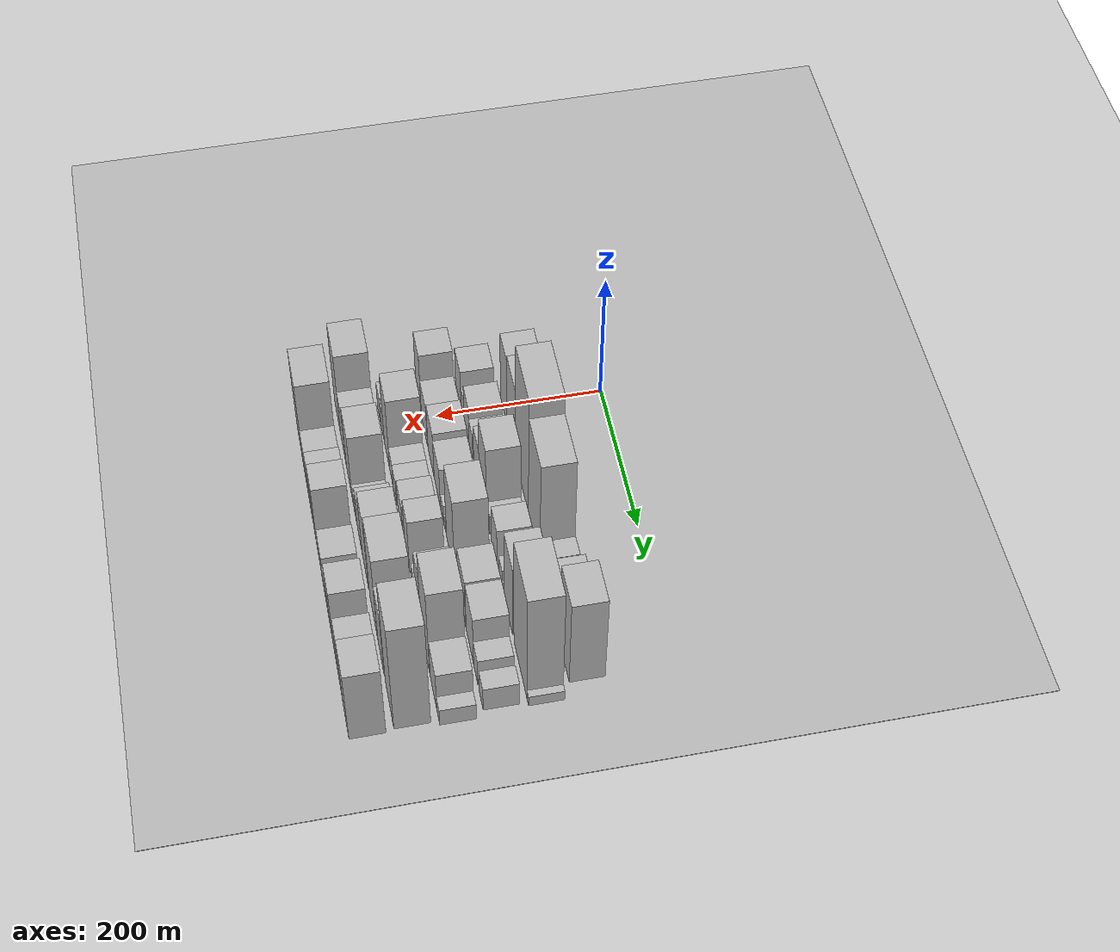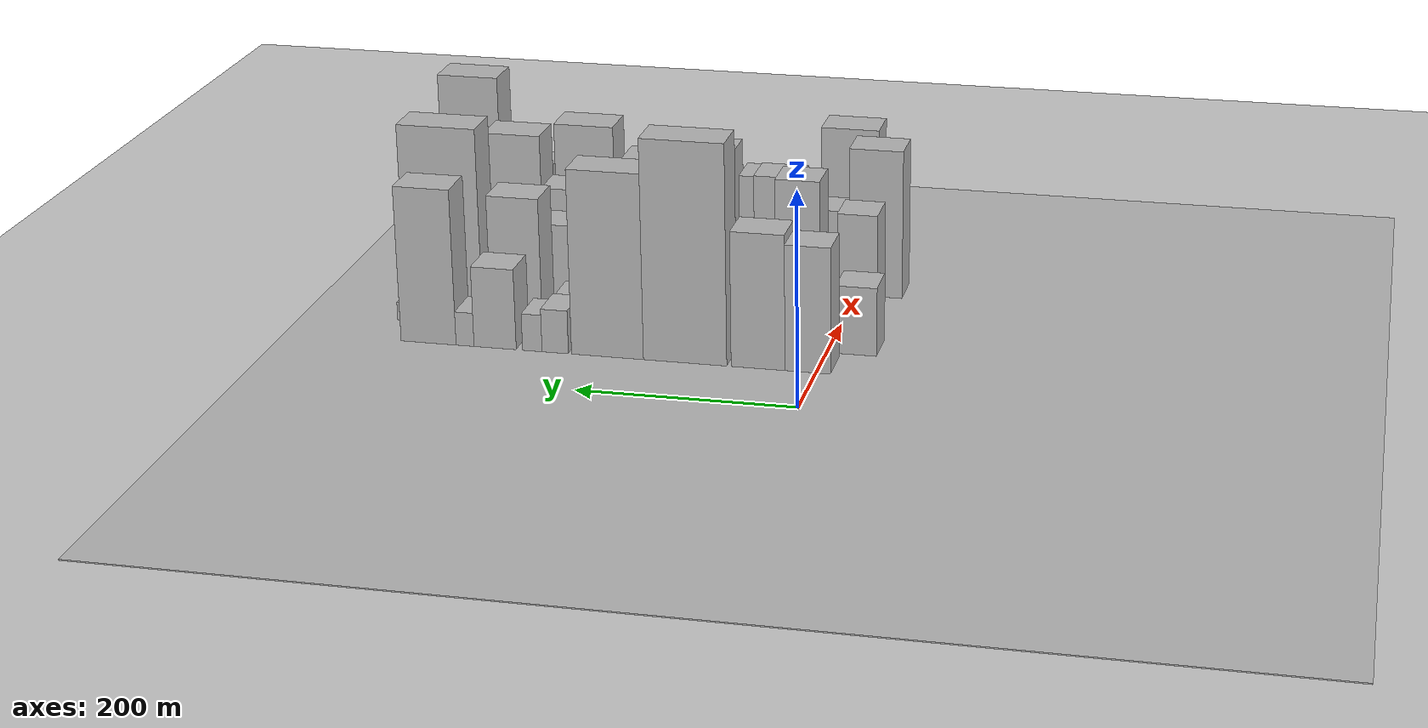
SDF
<sdf version="1.6">
 <world name="default">
  <include><name>ground_plane_1</name><uri>model://HANNAS_ground_plane</uri></include>
  <include>
   <name>ground_plane_2</name>
   <uri>model://HANNAS_ground_plane</uri>
   <pose>100 0 0  0 0 0</pose>
  </include>
  <model name="building_20">
   <static>1</static>
   <pose>100.0000 7.6626 0 0.000000 0.000000 0.000000</pose>
   <link name="link">
    <pose>0 0 60.00 0 0 0</pose>
    <collision name="collision"><geometry><box><size>40.0000 41.7325 120.0000</size></box></geometry></collision>
    <visual name="visual">
     <cast_shadows>0</cast_shadows>
     <geometry><box><size>40.0000 41.7325 120.0000</size></box></geometry>
     <material>
      <script>
       <uri>model://HANNAS_wall/materials/scripts</uri>
       <uri>model://HANNAS_wall/materials/textures</uri>
       <name>vrc/HANNAS_wall</name>
      </script>
     </material>
    </visual>
   </link>
  </model>
  <model name="building_21">
   <static>1</static>
   <pose>100.0000 53.1898 0 0.000000 0.000000 0.000000</pose>
   <link name="link">
    <pose>0 0 64.50 0 0 0</pose>
    <collision name="collision"><geometry><box><size>40.0000 49.3220 129.0000</size></box></geometry></collision>
    <visual name="visual">
     <cast_shadows>0</cast_shadows>
     <geometry><box><size>40.0000 49.3220 129.0000</size></box></geometry>
     <material>
      <script>
       <uri>model://HANNAS_wall/materials/scripts</uri>
       <uri>model://HANNAS_wall/materials/textures</uri>
       <name>vrc/HANNAS_wall</name>
      </script>
     </material>
    </visual>
   </link>
  </model>
  <model name="building_22">
   <static>1</static>
   <pose>100.0000 120.4586 0 0.000000 0.000000 0.000000</pose>
   <link name="link">
    <pose>0 0 105.00 0 0 0</pose>
    <collision name="collision"><geometry><box><size>40.0000 77.2155 210.0000</size></box></geometry></collision>
    <visual name="visual">
     <cast_shadows>0</cast_shadows>
     <geometry><box><size>40.0000 77.2155 210.0000</size></box></geometry>
     <material>
      <script>
       <uri>model://HANNAS_wall/materials/scripts</uri>
       <uri>model://HANNAS_wall/materials/textures</uri>
       <name>vrc/HANNAS_wall</name>
      </script>
     </material>
    </visual>
   </link>
  </model>
  <model name="building_23">
   <static>1</static>
   <pose>100.0000 192.7061 0 0.000000 0.000000 0.000000</pose>
   <link name="link">
    <pose>0 0 88.50 0 0 0</pose>
    <collision name="collision"><geometry><box><size>40.0000 67.2794 177.0000</size></box></geometry></collision>
    <visual name="visual">
     <cast_shadows>0</cast_shadows>
     <geometry><box><size>40.0000 67.2794 177.0000</size></box></geometry>
     <material>
      <script>
       <uri>model://HANNAS_wall/materials/scripts</uri>
       <uri>model://HANNAS_wall/materials/textures</uri>
       <name>vrc/HANNAS_wall</name>
      </script>
     </material>
    </visual>
   </link>
  </model>
  <model name="building_24">
   <static>1</static>
   <pose>100.0000 241.7687 0 0.000000 0.000000 0.000000</pose>
   <link name="link">
    <pose>0 0 21.00 0 0 0</pose>
    <collision name="collision"><geometry><box><size>40.0000 24.8457 42.0000</size></box></geometry></collision>
    <visual name="visual">
     <cast_shadows>0</cast_shadows>
     <geometry><box><size>40.0000 24.8457 42.0000</size></box></geometry>
     <material>
      <script>
       <uri>model://HANNAS_wall/materials/scripts</uri>
       <uri>model://HANNAS_wall/materials/textures</uri>
       <name>vrc/HANNAS_wall</name>
      </script>
     </material>
    </visual>
   </link>
  </model>
  <model name="building_25">
   <static>1</static>
   <pose>100.0000 263.3841 0 0.000000 0.000000 0.000000</pose>
   <link name="link">
    <pose>0 0 18.00 0 0 0</pose>
    <collision name="collision"><geometry><box><size>40.0000 18.3851 36.0000</size></box></geometry></collision>
    <visual name="visual">
     <cast_shadows>0</cast_shadows>
     <geometry><box><size>40.0000 18.3851 36.0000</size></box></geometry>
     <material>
      <script>
       <uri>model://HANNAS_wall/materials/scripts</uri>
       <uri>model://HANNAS_wall/materials/textures</uri>
       <name>vrc/HANNAS_wall</name>
      </script>
     </material>
    </visual>
   </link>
  </model>
  <model name="building_26">
   <static>1</static>
   <pose>100.0000 298.6132 0 0.000000 0.000000 0.000000</pose>
   <link name="link">
    <pose>0 0 39.00 0 0 0</pose>
    <collision name="collision"><geometry><box><size>40.0000 40.0731 78.0000</size></box></geometry></collision>
    <visual name="visual">
     <cast_shadows>0</cast_shadows>
     <geometry><box><size>40.0000 40.0731 78.0000</size></box></geometry>
     <material>
      <script>
       <uri>model://HANNAS_wall/materials/scripts</uri>
       <uri>model://HANNAS_wall/materials/textures</uri>
       <name>vrc/HANNAS_wall</name>
      </script>
     </material>
    </visual>
   </link>
  </model>
  <model name="building_27">
   <static>1</static>
   <pose>100.0000 327.2101 0 0.000000 0.000000 0.000000</pose>
   <link name="link">
    <pose>0 0 16.50 0 0 0</pose>
    <collision name="collision"><geometry><box><size>40.0000 17.1208 33.0000</size></box></geometry></collision>
    <visual name="visual">
     <cast_shadows>0</cast_shadows>
     <geometry><box><size>40.0000 17.1208 33.0000</size></box></geometry>
     <material>
      <script>
       <uri>model://HANNAS_wall/materials/scripts</uri>
       <uri>model://HANNAS_wall/materials/textures</uri>
       <name>vrc/HANNAS_wall</name>
      </script>
     </material>
    </visual>
   </link>
  </model>
  <model name="building_28">
   <static>1</static>
   <pose>100.0000 362.1164 0 0.000000 0.000000 0.000000</pose>
   <link name="link">
    <pose>0 0 75.00 0 0 0</pose>
    <collision name="collision"><geometry><box><size>40.0000 52.6917 150.0000</size></box></geometry></collision>
    <visual name="visual">
     <cast_shadows>0</cast_shadows>
     <geometry><box><size>40.0000 52.6917 150.0000</size></box></geometry>
     <material>
      <script>
       <uri>model://HANNAS_wall/materials/scripts</uri>
       <uri>model://HANNAS_wall/materials/textures</uri>
       <name>vrc/HANNAS_wall</name>
      </script>
     </material>
    </visual>
   </link>
  </model>
  <model name="building_69">
   <static>1</static>
   <pose>149.0000 -27.0081 0 0.000000 0.000000 0.000000</pose>
   <link name="link">
    <pose>0 0 33.00 0 0 0</pose>
    <collision name="collision"><geometry><box><size>40.0000 37.9556 66.0000</size></box></geometry></collision>
    <visual name="visual">
     <cast_shadows>0</cast_shadows>
     <geometry><box><size>40.0000 37.9556 66.0000</size></box></geometry>
     <material>
      <script>
       <uri>model://HANNAS_wall/materials/scripts</uri>
       <uri>model://HANNAS_wall/materials/textures</uri>
       <name>vrc/HANNAS_wall</name>
      </script>
     </material>
    </visual>
   </link>
  </model>
  <model name="building_70">
   <static>1</static>
   <pose>149.0000 2.3802 0 0.000000 0.000000 0.000000</pose>
   <link name="link">
    <pose>0 0 19.50 0 0 0</pose>
    <collision name="collision"><geometry><box><size>40.0000 20.8209 39.0000</size></box></geometry></collision>
    <visual name="visual">
     <cast_shadows>0</cast_shadows>
     <geometry><box><size>40.0000 20.8209 39.0000</size></box></geometry>
     <material>
      <script>
       <uri>model://HANNAS_wall/materials/scripts</uri>
       <uri>model://HANNAS_wall/materials/textures</uri>
       <name>vrc/HANNAS_wall</name>
      </script>
     </material>
    </visual>
   </link>
  </model>
  <model name="building_71">
   <static>1</static>
   <pose>149.0000 29.3461 0 0.000000 0.000000 0.000000</pose>
   <link name="link">
    <pose>0 0 33.00 0 0 0</pose>
    <collision name="collision"><geometry><box><size>40.0000 33.1109 66.0000</size></box></geometry></collision>
    <visual name="visual">
     <cast_shadows>0</cast_shadows>
     <geometry><box><size>40.0000 33.1109 66.0000</size></box></geometry>
     <material>
      <script>
       <uri>model://HANNAS_wall/materials/scripts</uri>
       <uri>model://HANNAS_wall/materials/textures</uri>
       <name>vrc/HANNAS_wall</name>
      </script>
     </material>
    </visual>
   </link>
  </model>
  <model name="building_72">
   <static>1</static>
   <pose>149.0000 58.6786 0 0.000000 0.000000 0.000000</pose>
   <link name="link">
    <pose>0 0 22.50 0 0 0</pose>
    <collision name="collision"><geometry><box><size>40.0000 25.5540 45.0000</size></box></geometry></collision>
    <visual name="visual">
     <cast_shadows>0</cast_shadows>
     <geometry><box><size>40.0000 25.5540 45.0000</size></box></geometry>
     <material>
      <script>
       <uri>model://HANNAS_wall/materials/scripts</uri>
       <uri>model://HANNAS_wall/materials/textures</uri>
       <name>vrc/HANNAS_wall</name>
      </script>
     </material>
    </visual>
   </link>
  </model>
  <model name="building_73">
   <static>1</static>
   <pose>149.0000 95.9520 0 0.000000 0.000000 0.000000</pose>
   <link name="link">
    <pose>0 0 36.00 0 0 0</pose>
    <collision name="collision"><geometry><box><size>40.0000 36.9929 72.0000</size></box></geometry></collision>
    <visual name="visual">
     <cast_shadows>0</cast_shadows>
     <geometry><box><size>40.0000 36.9929 72.0000</size></box></geometry>
     <material>
      <script>
       <uri>model://HANNAS_wall/materials/scripts</uri>
       <uri>model://HANNAS_wall/materials/textures</uri>
       <name>vrc/HANNAS_wall</name>
      </script>
     </material>
    </visual>
   </link>
  </model>
  <model name="building_74">
   <static>1</static>
   <pose>149.0000 137.1826 0 0.000000 0.000000 0.000000</pose>
   <link name="link">
    <pose>0 0 66.00 0 0 0</pose>
    <collision name="collision"><geometry><box><size>40.0000 45.4683 132.0000</size></box></geometry></collision>
    <visual name="visual">
     <cast_shadows>0</cast_shadows>
     <geometry><box><size>40.0000 45.4683 132.0000</size></box></geometry>
     <material>
      <script>
       <uri>model://HANNAS_wall/materials/scripts</uri>
       <uri>model://HANNAS_wall/materials/textures</uri>
       <name>vrc/HANNAS_wall</name>
      </script>
     </material>
    </visual>
   </link>
  </model>
  <model name="building_75">
   <static>1</static>
   <pose>149.0000 170.0718 0 0.000000 0.000000 0.000000</pose>
   <link name="link">
    <pose>0 0 18.00 0 0 0</pose>
    <collision name="collision"><geometry><box><size>40.0000 20.3101 36.0000</size></box></geometry></collision>
    <visual name="visual">
     <cast_shadows>0</cast_shadows>
     <geometry><box><size>40.0000 20.3101 36.0000</size></box></geometry>
     <material>
      <script>
       <uri>model://HANNAS_wall/materials/scripts</uri>
       <uri>model://HANNAS_wall/materials/textures</uri>
       <name>vrc/HANNAS_wall</name>
      </script>
     </material>
    </visual>
   </link>
  </model>
  <model name="building_76">
   <static>1</static>
   <pose>149.0000 207.6532 0 0.000000 0.000000 0.000000</pose>
   <link name="link">
    <pose>0 0 34.50 0 0 0</pose>
    <collision name="collision"><geometry><box><size>40.0000 34.8527 69.0000</size></box></geometry></collision>
    <visual name="visual">
     <cast_shadows>0</cast_shadows>
     <geometry><box><size>40.0000 34.8527 69.0000</size></box></geometry>
     <material>
      <script>
       <uri>model://HANNAS_wall/materials/scripts</uri>
       <uri>model://HANNAS_wall/materials/textures</uri>
       <name>vrc/HANNAS_wall</name>
      </script>
     </material>
    </visual>
   </link>
  </model>
  <model name="building_77">
   <static>1</static>
   <pose>149.0000 245.5454 0 0.000000 0.000000 0.000000</pose>
   <link name="link">
    <pose>0 0 18.00 0 0 0</pose>
    <collision name="collision"><geometry><box><size>40.0000 20.9316 36.0000</size></box></geometry></collision>
    <visual name="visual">
     <cast_shadows>0</cast_shadows>
     <geometry><box><size>40.0000 20.9316 36.0000</size></box></geometry>
     <material>
      <script>
       <uri>model://HANNAS_wall/materials/scripts</uri>
       <uri>model://HANNAS_wall/materials/textures</uri>
       <name>vrc/HANNAS_wall</name>
      </script>
     </material>
    </visual>
   </link>
  </model>
  <model name="building_78">
   <static>1</static>
   <pose>149.0000 260.1141 0 0.000000 0.000000 0.000000</pose>
   <link name="link">
    <pose>0 0 9.00 0 0 0</pose>
    <collision name="collision"><geometry><box><size>40.0000 8.2059 18.0000</size></box></geometry></collision>
    <visual name="visual">
     <cast_shadows>0</cast_shadows>
     <geometry><box><size>40.0000 8.2059 18.0000</size></box></geometry>
     <material>
      <script>
       <uri>model://HANNAS_wall/materials/scripts</uri>
       <uri>model://HANNAS_wall/materials/textures</uri>
       <name>vrc/HANNAS_wall</name>
      </script>
     </material>
    </visual>
   </link>
  </model>
  <model name="building_79">
   <static>1</static>
   <pose>149.0000 292.8323 0 0.000000 0.000000 0.000000</pose>
   <link name="link">
    <pose>0 0 64.50 0 0 0</pose>
    <collision name="collision"><geometry><box><size>40.0000 49.2306 129.0000</size></box></geometry></collision>
    <visual name="visual">
     <cast_shadows>0</cast_shadows>
     <geometry><box><size>40.0000 49.2306 129.0000</size></box></geometry>
     <material>
      <script>
       <uri>model://HANNAS_wall/materials/scripts</uri>
       <uri>model://HANNAS_wall/materials/textures</uri>
       <name>vrc/HANNAS_wall</name>
      </script>
     </material>
    </visual>
   </link>
  </model>
  <model name="building_80">
   <static>1</static>
   <pose>149.0000 362.6194 0 0.000000 0.000000 0.000000</pose>
   <link name="link">
    <pose>0 0 96.00 0 0 0</pose>
    <collision name="collision"><geometry><box><size>40.0000 74.3436 192.0000</size></box></geometry></collision>
    <visual name="visual">
     <cast_shadows>0</cast_shadows>
     <geometry><box><size>40.0000 74.3436 192.0000</size></box></geometry>
     <material>
      <script>
       <uri>model://HANNAS_wall/materials/scripts</uri>
       <uri>model://HANNAS_wall/materials/textures</uri>
       <name>vrc/HANNAS_wall</name>
      </script>
     </material>
    </visual>
   </link>
  </model>
  <model name="building_81">
   <static>1</static>
   <pose>149.0000 404.2570 0 0.000000 0.000000 0.000000</pose>
   <link name="link">
    <pose>0 0 9.00 0 0 0</pose>
    <collision name="collision"><geometry><box><size>40.0000 8.9315 18.0000</size></box></geometry></collision>
    <visual name="visual">
     <cast_shadows>0</cast_shadows>
     <geometry><box><size>40.0000 8.9315 18.0000</size></box></geometry>
     <material>
      <script>
       <uri>model://HANNAS_wall/materials/scripts</uri>
       <uri>model://HANNAS_wall/materials/textures</uri>
       <name>vrc/HANNAS_wall</name>
      </script>
     </material>
    </visual>
   </link>
  </model>
  <model name="building_121">
   <static>1</static>
   <pose>198.0000 -18.5015 0 0.000000 0.000000 0.000000</pose>
   <link name="link">
    <pose>0 0 58.50 0 0 0</pose>
    <collision name="collision"><geometry><box><size>40.0000 37.3199 117.0000</size></box></geometry></collision>
    <visual name="visual">
     <cast_shadows>0</cast_shadows>
     <geometry><box><size>40.0000 37.3199 117.0000</size></box></geometry>
     <material>
      <script>
       <uri>model://HANNAS_wall/materials/scripts</uri>
       <uri>model://HANNAS_wall/materials/textures</uri>
       <name>vrc/HANNAS_wall</name>
      </script>
     </material>
    </visual>
   </link>
  </model>
  <model name="building_122">
   <static>1</static>
   <pose>198.0000 21.1264 0 0.000000 0.000000 0.000000</pose>
   <link name="link">
    <pose>0 0 36.00 0 0 0</pose>
    <collision name="collision"><geometry><box><size>40.0000 41.9359 72.0000</size></box></geometry></collision>
    <visual name="visual">
     <cast_shadows>0</cast_shadows>
     <geometry><box><size>40.0000 41.9359 72.0000</size></box></geometry>
     <material>
      <script>
       <uri>model://HANNAS_wall/materials/scripts</uri>
       <uri>model://HANNAS_wall/materials/textures</uri>
       <name>vrc/HANNAS_wall</name>
      </script>
     </material>
    </visual>
   </link>
  </model>
  <model name="building_123">
   <static>1</static>
   <pose>198.0000 67.8071 0 0.000000 0.000000 0.000000</pose>
   <link name="link">
    <pose>0 0 42.00 0 0 0</pose>
    <collision name="collision"><geometry><box><size>40.0000 43.4254 84.0000</size></box></geometry></collision>
    <visual name="visual">
     <cast_shadows>0</cast_shadows>
     <geometry><box><size>40.0000 43.4254 84.0000</size></box></geometry>
     <material>
      <script>
       <uri>model://HANNAS_wall/materials/scripts</uri>
       <uri>model://HANNAS_wall/materials/textures</uri>
       <name>vrc/HANNAS_wall</name>
      </script>
     </material>
    </visual>
   </link>
  </model>
  <model name="building_124">
   <static>1</static>
   <pose>198.0000 110.8827 0 0.000000 0.000000 0.000000</pose>
   <link name="link">
    <pose>0 0 36.00 0 0 0</pose>
    <collision name="collision"><geometry><box><size>40.0000 42.7259 72.0000</size></box></geometry></collision>
    <visual name="visual">
     <cast_shadows>0</cast_shadows>
     <geometry><box><size>40.0000 42.7259 72.0000</size></box></geometry>
     <material>
      <script>
       <uri>model://HANNAS_wall/materials/scripts</uri>
       <uri>model://HANNAS_wall/materials/textures</uri>
       <name>vrc/HANNAS_wall</name>
      </script>
     </material>
    </visual>
   </link>
  </model>
  <model name="building_125">
   <static>1</static>
   <pose>198.0000 144.0480 0 0.000000 0.000000 0.000000</pose>
   <link name="link">
    <pose>0 0 15.00 0 0 0</pose>
    <collision name="collision"><geometry><box><size>40.0000 17.6046 30.0000</size></box></geometry></collision>
    <visual name="visual">
     <cast_shadows>0</cast_shadows>
     <geometry><box><size>40.0000 17.6046 30.0000</size></box></geometry>
     <material>
      <script>
       <uri>model://HANNAS_wall/materials/scripts</uri>
       <uri>model://HANNAS_wall/materials/textures</uri>
       <name>vrc/HANNAS_wall</name>
      </script>
     </material>
    </visual>
   </link>
  </model>
  <model name="building_126">
   <static>1</static>
   <pose>198.0000 161.9585 0 0.000000 0.000000 0.000000</pose>
   <link name="link">
    <pose>0 0 10.50 0 0 0</pose>
    <collision name="collision"><geometry><box><size>40.0000 10.2165 21.0000</size></box></geometry></collision>
    <visual name="visual">
     <cast_shadows>0</cast_shadows>
     <geometry><box><size>40.0000 10.2165 21.0000</size></box></geometry>
     <material>
      <script>
       <uri>model://HANNAS_wall/materials/scripts</uri>
       <uri>model://HANNAS_wall/materials/textures</uri>
       <name>vrc/HANNAS_wall</name>
      </script>
     </material>
    </visual>
   </link>
  </model>
  <model name="building_127">
   <static>1</static>
   <pose>198.0000 200.3316 0 0.000000 0.000000 0.000000</pose>
   <link name="link">
    <pose>0 0 69.00 0 0 0</pose>
    <collision name="collision"><geometry><box><size>40.0000 52.5296 138.0000</size></box></geometry></collision>
    <visual name="visual">
     <cast_shadows>0</cast_shadows>
     <geometry><box><size>40.0000 52.5296 138.0000</size></box></geometry>
     <material>
      <script>
       <uri>model://HANNAS_wall/materials/scripts</uri>
       <uri>model://HANNAS_wall/materials/textures</uri>
       <name>vrc/HANNAS_wall</name>
      </script>
     </material>
    </visual>
   </link>
  </model>
  <model name="building_128">
   <static>1</static>
   <pose>198.0000 242.1498 0 0.000000 0.000000 0.000000</pose>
   <link name="link">
    <pose>0 0 15.00 0 0 0</pose>
    <collision name="collision"><geometry><box><size>40.0000 17.1070 30.0000</size></box></geometry></collision>
    <visual name="visual">
     <cast_shadows>0</cast_shadows>
     <geometry><box><size>40.0000 17.1070 30.0000</size></box></geometry>
     <material>
      <script>
       <uri>model://HANNAS_wall/materials/scripts</uri>
       <uri>model://HANNAS_wall/materials/textures</uri>
       <name>vrc/HANNAS_wall</name>
      </script>
     </material>
    </visual>
   </link>
  </model>
  <model name="building_129">
   <static>1</static>
   <pose>198.0000 273.7677 0 0.000000 0.000000 0.000000</pose>
   <link name="link">
    <pose>0 0 43.50 0 0 0</pose>
    <collision name="collision"><geometry><box><size>40.0000 46.1288 87.0000</size></box></geometry></collision>
    <visual name="visual">
     <cast_shadows>0</cast_shadows>
     <geometry><box><size>40.0000 46.1288 87.0000</size></box></geometry>
     <material>
      <script>
       <uri>model://HANNAS_wall/materials/scripts</uri>
       <uri>model://HANNAS_wall/materials/textures</uri>
       <name>vrc/HANNAS_wall</name>
      </script>
     </material>
    </visual>
   </link>
  </model>
  <model name="building_130">
   <static>1</static>
   <pose>198.0000 324.0325 0 0.000000 0.000000 0.000000</pose>
   <link name="link">
    <pose>0 0 45.00 0 0 0</pose>
    <collision name="collision"><geometry><box><size>40.0000 46.4008 90.0000</size></box></geometry></collision>
    <visual name="visual">
     <cast_shadows>0</cast_shadows>
     <geometry><box><size>40.0000 46.4008 90.0000</size></box></geometry>
     <material>
      <script>
       <uri>model://HANNAS_wall/materials/scripts</uri>
       <uri>model://HANNAS_wall/materials/textures</uri>
       <name>vrc/HANNAS_wall</name>
      </script>
     </material>
    </visual>
   </link>
  </model>
  <model name="building_131">
   <static>1</static>
   <pose>198.0000 360.0544 0 0.000000 0.000000 0.000000</pose>
   <link name="link">
    <pose>0 0 24.00 0 0 0</pose>
    <collision name="collision"><geometry><box><size>40.0000 25.6430 48.0000</size></box></geometry></collision>
    <visual name="visual">
     <cast_shadows>0</cast_shadows>
     <geometry><box><size>40.0000 25.6430 48.0000</size></box></geometry>
     <material>
      <script>
       <uri>model://HANNAS_wall/materials/scripts</uri>
       <uri>model://HANNAS_wall/materials/textures</uri>
       <name>vrc/HANNAS_wall</name>
      </script>
     </material>
    </visual>
   </link>
  </model>
  <model name="building_132">
   <static>1</static>
   <pose>198.0000 392.7272 0 0.000000 0.000000 0.000000</pose>
   <link name="link">
    <pose>0 0 21.00 0 0 0</pose>
    <collision name="collision"><geometry><box><size>40.0000 23.7026 42.0000</size></box></geometry></collision>
    <visual name="visual">
     <cast_shadows>0</cast_shadows>
     <geometry><box><size>40.0000 23.7026 42.0000</size></box></geometry>
     <material>
      <script>
       <uri>model://HANNAS_wall/materials/scripts</uri>
       <uri>model://HANNAS_wall/materials/textures</uri>
       <name>vrc/HANNAS_wall</name>
      </script>
     </material>
    </visual>
   </link>
  </model>
  <model name="building_165">
   <static>1</static>
   <pose>247.0000 -11.7352 0 0.000000 0.000000 0.000000</pose>
   <link name="link">
    <pose>0 0 25.50 0 0 0</pose>
    <collision name="collision"><geometry><box><size>40.0000 25.8268 51.0000</size></box></geometry></collision>
    <visual name="visual">
     <cast_shadows>0</cast_shadows>
     <geometry><box><size>40.0000 25.8268 51.0000</size></box></geometry>
     <material>
      <script>
       <uri>model://HANNAS_wall/materials/scripts</uri>
       <uri>model://HANNAS_wall/materials/textures</uri>
       <name>vrc/HANNAS_wall</name>
      </script>
     </material>
    </visual>
   </link>
  </model>
  <model name="building_166">
   <static>1</static>
   <pose>247.0000 13.8283 0 0.000000 0.000000 0.000000</pose>
   <link name="link">
    <pose>0 0 24.00 0 0 0</pose>
    <collision name="collision"><geometry><box><size>40.0000 25.3001 48.0000</size></box></geometry></collision>
    <visual name="visual">
     <cast_shadows>0</cast_shadows>
     <geometry><box><size>40.0000 25.3001 48.0000</size></box></geometry>
     <material>
      <script>
       <uri>model://HANNAS_wall/materials/scripts</uri>
       <uri>model://HANNAS_wall/materials/textures</uri>
       <name>vrc/HANNAS_wall</name>
      </script>
     </material>
    </visual>
   </link>
  </model>
  <model name="building_167">
   <static>1</static>
   <pose>247.0000 47.5861 0 0.000000 0.000000 0.000000</pose>
   <link name="link">
    <pose>0 0 64.50 0 0 0</pose>
    <collision name="collision"><geometry><box><size>40.0000 42.2155 129.0000</size></box></geometry></collision>
    <visual name="visual">
     <cast_shadows>0</cast_shadows>
     <geometry><box><size>40.0000 42.2155 129.0000</size></box></geometry>
     <material>
      <script>
       <uri>model://HANNAS_wall/materials/scripts</uri>
       <uri>model://HANNAS_wall/materials/textures</uri>
       <name>vrc/HANNAS_wall</name>
      </script>
     </material>
    </visual>
   </link>
  </model>
  <model name="building_168">
   <static>1</static>
   <pose>247.0000 81.4140 0 0.000000 0.000000 0.000000</pose>
   <link name="link">
    <pose>0 0 22.50 0 0 0</pose>
    <collision name="collision"><geometry><box><size>40.0000 25.4403 45.0000</size></box></geometry></collision>
    <visual name="visual">
     <cast_shadows>0</cast_shadows>
     <geometry><box><size>40.0000 25.4403 45.0000</size></box></geometry>
     <material>
      <script>
       <uri>model://HANNAS_wall/materials/scripts</uri>
       <uri>model://HANNAS_wall/materials/textures</uri>
       <name>vrc/HANNAS_wall</name>
      </script>
     </material>
    </visual>
   </link>
  </model>
  <model name="building_169">
   <static>1</static>
   <pose>247.0000 107.0900 0 0.000000 0.000000 0.000000</pose>
   <link name="link">
    <pose>0 0 22.50 0 0 0</pose>
    <collision name="collision"><geometry><box><size>40.0000 25.9116 45.0000</size></box></geometry></collision>
    <visual name="visual">
     <cast_shadows>0</cast_shadows>
     <geometry><box><size>40.0000 25.9116 45.0000</size></box></geometry>
     <material>
      <script>
       <uri>model://HANNAS_wall/materials/scripts</uri>
       <uri>model://HANNAS_wall/materials/textures</uri>
       <name>vrc/HANNAS_wall</name>
      </script>
     </material>
    </visual>
   </link>
  </model>
  <model name="building_170">
   <static>1</static>
   <pose>247.0000 148.8648 0 0.000000 0.000000 0.000000</pose>
   <link name="link">
    <pose>0 0 31.50 0 0 0</pose>
    <collision name="collision"><geometry><box><size>40.0000 37.6379 63.0000</size></box></geometry></collision>
    <visual name="visual">
     <cast_shadows>0</cast_shadows>
     <geometry><box><size>40.0000 37.6379 63.0000</size></box></geometry>
     <material>
      <script>
       <uri>model://HANNAS_wall/materials/scripts</uri>
       <uri>model://HANNAS_wall/materials/textures</uri>
       <name>vrc/HANNAS_wall</name>
      </script>
     </material>
    </visual>
   </link>
  </model>
  <model name="building_171">
   <static>1</static>
   <pose>247.0000 177.2192 0 0.000000 0.000000 0.000000</pose>
   <link name="link">
    <pose>0 0 10.50 0 0 0</pose>
    <collision name="collision"><geometry><box><size>40.0000 9.0709 21.0000</size></box></geometry></collision>
    <visual name="visual">
     <cast_shadows>0</cast_shadows>
     <geometry><box><size>40.0000 9.0709 21.0000</size></box></geometry>
     <material>
      <script>
       <uri>model://HANNAS_wall/materials/scripts</uri>
       <uri>model://HANNAS_wall/materials/textures</uri>
       <name>vrc/HANNAS_wall</name>
      </script>
     </material>
    </visual>
   </link>
  </model>
  <model name="building_172">
   <static>1</static>
   <pose>247.0000 197.6660 0 0.000000 0.000000 0.000000</pose>
   <link name="link">
    <pose>0 0 48.00 0 0 0</pose>
    <collision name="collision"><geometry><box><size>40.0000 31.8228 96.0000</size></box></geometry></collision>
    <visual name="visual">
     <cast_shadows>0</cast_shadows>
     <geometry><box><size>40.0000 31.8228 96.0000</size></box></geometry>
     <material>
      <script>
       <uri>model://HANNAS_wall/materials/scripts</uri>
       <uri>model://HANNAS_wall/materials/textures</uri>
       <name>vrc/HANNAS_wall</name>
      </script>
     </material>
    </visual>
   </link>
  </model>
  <model name="building_173">
   <static>1</static>
   <pose>247.0000 225.0468 0 0.000000 0.000000 0.000000</pose>
   <link name="link">
    <pose>0 0 7.50 0 0 0</pose>
    <collision name="collision"><geometry><box><size>40.0000 6.9388 15.0000</size></box></geometry></collision>
    <visual name="visual">
     <cast_shadows>0</cast_shadows>
     <geometry><box><size>40.0000 6.9388 15.0000</size></box></geometry>
     <material>
      <script>
       <uri>model://HANNAS_wall/materials/scripts</uri>
       <uri>model://HANNAS_wall/materials/textures</uri>
       <name>vrc/HANNAS_wall</name>
      </script>
     </material>
    </visual>
   </link>
  </model>
  <model name="building_174">
   <static>1</static>
   <pose>247.0000 239.3123 0 0.000000 0.000000 0.000000</pose>
   <link name="link">
    <pose>0 0 19.50 0 0 0</pose>
    <collision name="collision"><geometry><box><size>40.0000 21.5922 39.0000</size></box></geometry></collision>
    <visual name="visual">
     <cast_shadows>0</cast_shadows>
     <geometry><box><size>40.0000 21.5922 39.0000</size></box></geometry>
     <material>
      <script>
       <uri>model://HANNAS_wall/materials/scripts</uri>
       <uri>model://HANNAS_wall/materials/textures</uri>
       <name>vrc/HANNAS_wall</name>
      </script>
     </material>
    </visual>
   </link>
  </model>
  <model name="building_175">
   <static>1</static>
   <pose>247.0000 276.4694 0 0.000000 0.000000 0.000000</pose>
   <link name="link">
    <pose>0 0 52.50 0 0 0</pose>
    <collision name="collision"><geometry><box><size>40.0000 36.7220 105.0000</size></box></geometry></collision>
    <visual name="visual">
     <cast_shadows>0</cast_shadows>
     <geometry><box><size>40.0000 36.7220 105.0000</size></box></geometry>
     <material>
      <script>
       <uri>model://HANNAS_wall/materials/scripts</uri>
       <uri>model://HANNAS_wall/materials/textures</uri>
       <name>vrc/HANNAS_wall</name>
      </script>
     </material>
    </visual>
   </link>
  </model>
  <model name="building_176">
   <static>1</static>
   <pose>247.0000 321.9527 0 0.000000 0.000000 0.000000</pose>
   <link name="link">
    <pose>0 0 78.00 0 0 0</pose>
    <collision name="collision"><geometry><box><size>40.0000 54.2447 156.0000</size></box></geometry></collision>
    <visual name="visual">
     <cast_shadows>0</cast_shadows>
     <geometry><box><size>40.0000 54.2447 156.0000</size></box></geometry>
     <material>
      <script>
       <uri>model://HANNAS_wall/materials/scripts</uri>
       <uri>model://HANNAS_wall/materials/textures</uri>
       <name>vrc/HANNAS_wall</name>
      </script>
     </material>
    </visual>
   </link>
  </model>
  <model name="building_177">
   <static>1</static>
   <pose>247.0000 374.5886 0 0.000000 0.000000 0.000000</pose>
   <link name="link">
    <pose>0 0 36.00 0 0 0</pose>
    <collision name="collision"><geometry><box><size>40.0000 43.0271 72.0000</size></box></geometry></collision>
    <visual name="visual">
     <cast_shadows>0</cast_shadows>
     <geometry><box><size>40.0000 43.0271 72.0000</size></box></geometry>
     <material>
      <script>
       <uri>model://HANNAS_wall/materials/scripts</uri>
       <uri>model://HANNAS_wall/materials/textures</uri>
       <name>vrc/HANNAS_wall</name>
      </script>
     </material>
    </visual>
   </link>
  </model>
  <model name="building_178">
   <static>1</static>
   <pose>247.0000 404.9348 0 0.000000 0.000000 0.000000</pose>
   <link name="link">
    <pose>0 0 15.00 0 0 0</pose>
    <collision name="collision"><geometry><box><size>40.0000 17.6653 30.0000</size></box></geometry></collision>
    <visual name="visual">
     <cast_shadows>0</cast_shadows>
     <geometry><box><size>40.0000 17.6653 30.0000</size></box></geometry>
     <material>
      <script>
       <uri>model://HANNAS_wall/materials/scripts</uri>
       <uri>model://HANNAS_wall/materials/textures</uri>
       <name>vrc/HANNAS_wall</name>
      </script>
     </material>
    </visual>
   </link>
  </model>
  <model name="building_213">
   <static>1</static>
   <pose>296.0000 -17.9911 0 0.000000 0.000000 0.000000</pose>
   <link name="link">
    <pose>0 0 73.50 0 0 0</pose>
    <collision name="collision"><geometry><box><size>40.0000 51.4542 147.0000</size></box></geometry></collision>
    <visual name="visual">
     <cast_shadows>0</cast_shadows>
     <geometry><box><size>40.0000 51.4542 147.0000</size></box></geometry>
     <material>
      <script>
       <uri>model://HANNAS_wall/materials/scripts</uri>
       <uri>model://HANNAS_wall/materials/textures</uri>
       <name>vrc/HANNAS_wall</name>
      </script>
     </material>
    </visual>
   </link>
  </model>
  <model name="building_214">
   <static>1</static>
   <pose>296.0000 28.8180 0 0.000000 0.000000 0.000000</pose>
   <link name="link">
    <pose>0 0 42.00 0 0 0</pose>
    <collision name="collision"><geometry><box><size>40.0000 42.1639 84.0000</size></box></geometry></collision>
    <visual name="visual">
     <cast_shadows>0</cast_shadows>
     <geometry><box><size>40.0000 42.1639 84.0000</size></box></geometry>
     <material>
      <script>
       <uri>model://HANNAS_wall/materials/scripts</uri>
       <uri>model://HANNAS_wall/materials/textures</uri>
       <name>vrc/HANNAS_wall</name>
      </script>
     </material>
    </visual>
   </link>
  </model>
  <model name="building_215">
   <static>1</static>
   <pose>296.0000 77.4626 0 0.000000 0.000000 0.000000</pose>
   <link name="link">
    <pose>0 0 57.00 0 0 0</pose>
    <collision name="collision"><geometry><box><size>40.0000 45.1255 114.0000</size></box></geometry></collision>
    <visual name="visual">
     <cast_shadows>0</cast_shadows>
     <geometry><box><size>40.0000 45.1255 114.0000</size></box></geometry>
     <material>
      <script>
       <uri>model://HANNAS_wall/materials/scripts</uri>
       <uri>model://HANNAS_wall/materials/textures</uri>
       <name>vrc/HANNAS_wall</name>
      </script>
     </material>
    </visual>
   </link>
  </model>
  <model name="building_216">
   <static>1</static>
   <pose>296.0000 105.8909 0 0.000000 0.000000 0.000000</pose>
   <link name="link">
    <pose>0 0 13.50 0 0 0</pose>
    <collision name="collision"><geometry><box><size>40.0000 11.7311 27.0000</size></box></geometry></collision>
    <visual name="visual">
     <cast_shadows>0</cast_shadows>
     <geometry><box><size>40.0000 11.7311 27.0000</size></box></geometry>
     <material>
      <script>
       <uri>model://HANNAS_wall/materials/scripts</uri>
       <uri>model://HANNAS_wall/materials/textures</uri>
       <name>vrc/HANNAS_wall</name>
      </script>
     </material>
    </visual>
   </link>
  </model>
  <model name="building_217">
   <static>1</static>
   <pose>296.0000 122.2919 0 0.000000 0.000000 0.000000</pose>
   <link name="link">
    <pose>0 0 18.00 0 0 0</pose>
    <collision name="collision"><geometry><box><size>40.0000 21.0708 36.0000</size></box></geometry></collision>
    <visual name="visual">
     <cast_shadows>0</cast_shadows>
     <geometry><box><size>40.0000 21.0708 36.0000</size></box></geometry>
     <material>
      <script>
       <uri>model://HANNAS_wall/materials/scripts</uri>
       <uri>model://HANNAS_wall/materials/textures</uri>
       <name>vrc/HANNAS_wall</name>
      </script>
     </material>
    </visual>
   </link>
  </model>
  <model name="building_218">
   <static>1</static>
   <pose>296.0000 160.1550 0 0.000000 0.000000 0.000000</pose>
   <link name="link">
    <pose>0 0 37.50 0 0 0</pose>
    <collision name="collision"><geometry><box><size>40.0000 40.6554 75.0000</size></box></geometry></collision>
    <visual name="visual">
     <cast_shadows>0</cast_shadows>
     <geometry><box><size>40.0000 40.6554 75.0000</size></box></geometry>
     <material>
      <script>
       <uri>model://HANNAS_wall/materials/scripts</uri>
       <uri>model://HANNAS_wall/materials/textures</uri>
       <name>vrc/HANNAS_wall</name>
      </script>
     </material>
    </visual>
   </link>
  </model>
  <model name="building_219">
   <static>1</static>
   <pose>296.0000 204.7229 0 0.000000 0.000000 0.000000</pose>
   <link name="link">
    <pose>0 0 61.50 0 0 0</pose>
    <collision name="collision"><geometry><box><size>40.0000 48.4804 123.0000</size></box></geometry></collision>
    <visual name="visual">
     <cast_shadows>0</cast_shadows>
     <geometry><box><size>40.0000 48.4804 123.0000</size></box></geometry>
     <material>
      <script>
       <uri>model://HANNAS_wall/materials/scripts</uri>
       <uri>model://HANNAS_wall/materials/textures</uri>
       <name>vrc/HANNAS_wall</name>
      </script>
     </material>
    </visual>
   </link>
  </model>
  <model name="building_220">
   <static>1</static>
   <pose>296.0000 266.0598 0 0.000000 0.000000 0.000000</pose>
   <link name="link">
    <pose>0 0 76.50 0 0 0</pose>
    <collision name="collision"><geometry><box><size>40.0000 58.1935 153.0000</size></box></geometry></collision>
    <visual name="visual">
     <cast_shadows>0</cast_shadows>
     <geometry><box><size>40.0000 58.1935 153.0000</size></box></geometry>
     <material>
      <script>
       <uri>model://HANNAS_wall/materials/scripts</uri>
       <uri>model://HANNAS_wall/materials/textures</uri>
       <name>vrc/HANNAS_wall</name>
      </script>
     </material>
    </visual>
   </link>
  </model>
  <model name="building_221">
   <static>1</static>
   <pose>296.0000 320.0621 0 0.000000 0.000000 0.000000</pose>
   <link name="link">
    <pose>0 0 55.50 0 0 0</pose>
    <collision name="collision"><geometry><box><size>40.0000 43.8111 111.0000</size></box></geometry></collision>
    <visual name="visual">
     <cast_shadows>0</cast_shadows>
     <geometry><box><size>40.0000 43.8111 111.0000</size></box></geometry>
     <material>
      <script>
       <uri>model://HANNAS_wall/materials/scripts</uri>
       <uri>model://HANNAS_wall/materials/textures</uri>
       <name>vrc/HANNAS_wall</name>
      </script>
     </material>
    </visual>
   </link>
  </model>
  <model name="building_222">
   <static>1</static>
   <pose>296.0000 379.5109 0 0.000000 0.000000 0.000000</pose>
   <link name="link">
    <pose>0 0 97.50 0 0 0</pose>
    <collision name="collision"><geometry><box><size>40.0000 59.0866 195.0000</size></box></geometry></collision>
    <visual name="visual">
     <cast_shadows>0</cast_shadows>
     <geometry><box><size>40.0000 59.0866 195.0000</size></box></geometry>
     <material>
      <script>
       <uri>model://HANNAS_wall/materials/scripts</uri>
       <uri>model://HANNAS_wall/materials/textures</uri>
       <name>vrc/HANNAS_wall</name>
      </script>
     </material>
    </visual>
   </link>
  </model>
  <model name="building_257">
   <static>1</static>
   <pose>345.0000 16.3156 0 0.000000 0.000000 0.000000</pose>
   <link name="link">
    <pose>0 0 75.00 0 0 0</pose>
    <collision name="collision"><geometry><box><size>40.0000 55.8844 150.0000</size></box></geometry></collision>
    <visual name="visual">
     <cast_shadows>0</cast_shadows>
     <geometry><box><size>40.0000 55.8844 150.0000</size></box></geometry>
     <material>
      <script>
       <uri>model://HANNAS_wall/materials/scripts</uri>
       <uri>model://HANNAS_wall/materials/textures</uri>
       <name>vrc/HANNAS_wall</name>
      </script>
     </material>
    </visual>
   </link>
  </model>
  <model name="building_258">
   <static>1</static>
   <pose>345.0000 68.8570 0 0.000000 0.000000 0.000000</pose>
   <link name="link">
    <pose>0 0 37.50 0 0 0</pose>
    <collision name="collision"><geometry><box><size>40.0000 41.1986 75.0000</size></box></geometry></collision>
    <visual name="visual">
     <cast_shadows>0</cast_shadows>
     <geometry><box><size>40.0000 41.1986 75.0000</size></box></geometry>
     <material>
      <script>
       <uri>model://HANNAS_wall/materials/scripts</uri>
       <uri>model://HANNAS_wall/materials/textures</uri>
       <name>vrc/HANNAS_wall</name>
      </script>
     </material>
    </visual>
   </link>
  </model>
  <model name="building_259">
   <static>1</static>
   <pose>345.0000 110.6557 0 0.000000 0.000000 0.000000</pose>
   <link name="link">
    <pose>0 0 48.00 0 0 0</pose>
    <collision name="collision"><geometry><box><size>40.0000 30.3987 96.0000</size></box></geometry></collision>
    <visual name="visual">
     <cast_shadows>0</cast_shadows>
     <geometry><box><size>40.0000 30.3987 96.0000</size></box></geometry>
     <material>
      <script>
       <uri>model://HANNAS_wall/materials/scripts</uri>
       <uri>model://HANNAS_wall/materials/textures</uri>
       <name>vrc/HANNAS_wall</name>
      </script>
     </material>
    </visual>
   </link>
  </model>
  <model name="building_260">
   <static>1</static>
   <pose>345.0000 149.2025 0 0.000000 0.000000 0.000000</pose>
   <link name="link">
    <pose>0 0 60.00 0 0 0</pose>
    <collision name="collision"><geometry><box><size>40.0000 36.6948 120.0000</size></box></geometry></collision>
    <visual name="visual">
     <cast_shadows>0</cast_shadows>
     <geometry><box><size>40.0000 36.6948 120.0000</size></box></geometry>
     <material>
      <script>
       <uri>model://HANNAS_wall/materials/scripts</uri>
       <uri>model://HANNAS_wall/materials/textures</uri>
       <name>vrc/HANNAS_wall</name>
      </script>
     </material>
    </visual>
   </link>
  </model>
  <model name="building_261">
   <static>1</static>
   <pose>345.0000 173.7968 0 0.000000 0.000000 0.000000</pose>
   <link name="link">
    <pose>0 0 13.50 0 0 0</pose>
    <collision name="collision"><geometry><box><size>40.0000 12.4939 27.0000</size></box></geometry></collision>
    <visual name="visual">
     <cast_shadows>0</cast_shadows>
     <geometry><box><size>40.0000 12.4939 27.0000</size></box></geometry>
     <material>
      <script>
       <uri>model://HANNAS_wall/materials/scripts</uri>
       <uri>model://HANNAS_wall/materials/textures</uri>
       <name>vrc/HANNAS_wall</name>
      </script>
     </material>
    </visual>
   </link>
  </model>
  <model name="building_262">
   <static>1</static>
   <pose>345.0000 203.9153 0 0.000000 0.000000 0.000000</pose>
   <link name="link">
    <pose>0 0 34.50 0 0 0</pose>
    <collision name="collision"><geometry><box><size>40.0000 39.7429 69.0000</size></box></geometry></collision>
    <visual name="visual">
     <cast_shadows>0</cast_shadows>
     <geometry><box><size>40.0000 39.7429 69.0000</size></box></geometry>
     <material>
      <script>
       <uri>model://HANNAS_wall/materials/scripts</uri>
       <uri>model://HANNAS_wall/materials/textures</uri>
       <name>vrc/HANNAS_wall</name>
      </script>
     </material>
    </visual>
   </link>
  </model>
  <model name="building_263">
   <static>1</static>
   <pose>345.0000 239.8268 0 0.000000 0.000000 0.000000</pose>
   <link name="link">
    <pose>0 0 27.00 0 0 0</pose>
    <collision name="collision"><geometry><box><size>40.0000 32.0801 54.0000</size></box></geometry></collision>
    <visual name="visual">
     <cast_shadows>0</cast_shadows>
     <geometry><box><size>40.0000 32.0801 54.0000</size></box></geometry>
     <material>
      <script>
       <uri>model://HANNAS_wall/materials/scripts</uri>
       <uri>model://HANNAS_wall/materials/textures</uri>
       <name>vrc/HANNAS_wall</name>
      </script>
     </material>
    </visual>
   </link>
  </model>
  <model name="building_264">
   <static>1</static>
   <pose>345.0000 260.3345 0 0.000000 0.000000 0.000000</pose>
   <link name="link">
    <pose>0 0 10.50 0 0 0</pose>
    <collision name="collision"><geometry><box><size>40.0000 8.9354 21.0000</size></box></geometry></collision>
    <visual name="visual">
     <cast_shadows>0</cast_shadows>
     <geometry><box><size>40.0000 8.9354 21.0000</size></box></geometry>
     <material>
      <script>
       <uri>model://HANNAS_wall/materials/scripts</uri>
       <uri>model://HANNAS_wall/materials/textures</uri>
       <name>vrc/HANNAS_wall</name>
      </script>
     </material>
    </visual>
   </link>
  </model>
  <model name="building_265">
   <static>1</static>
   <pose>345.0000 284.9429 0 0.000000 0.000000 0.000000</pose>
   <link name="link">
    <pose>0 0 60.00 0 0 0</pose>
    <collision name="collision"><geometry><box><size>40.0000 40.2812 120.0000</size></box></geometry></collision>
    <visual name="visual">
     <cast_shadows>0</cast_shadows>
     <geometry><box><size>40.0000 40.2812 120.0000</size></box></geometry>
     <material>
      <script>
       <uri>model://HANNAS_wall/materials/scripts</uri>
       <uri>model://HANNAS_wall/materials/textures</uri>
       <name>vrc/HANNAS_wall</name>
      </script>
     </material>
    </visual>
   </link>
  </model>
  <model name="building_266">
   <static>1</static>
   <pose>345.0000 317.1296 0 0.000000 0.000000 0.000000</pose>
   <link name="link">
    <pose>0 0 22.50 0 0 0</pose>
    <collision name="collision"><geometry><box><size>40.0000 24.0922 45.0000</size></box></geometry></collision>
    <visual name="visual">
     <cast_shadows>0</cast_shadows>
     <geometry><box><size>40.0000 24.0922 45.0000</size></box></geometry>
     <material>
      <script>
       <uri>model://HANNAS_wall/materials/scripts</uri>
       <uri>model://HANNAS_wall/materials/textures</uri>
       <name>vrc/HANNAS_wall</name>
      </script>
     </material>
    </visual>
   </link>
  </model>
  <model name="building_267">
   <static>1</static>
   <pose>345.0000 347.2570 0 0.000000 0.000000 0.000000</pose>
   <link name="link">
    <pose>0 0 55.50 0 0 0</pose>
    <collision name="collision"><geometry><box><size>40.0000 36.1626 111.0000</size></box></geometry></collision>
    <visual name="visual">
     <cast_shadows>0</cast_shadows>
     <geometry><box><size>40.0000 36.1626 111.0000</size></box></geometry>
     <material>
      <script>
       <uri>model://HANNAS_wall/materials/scripts</uri>
       <uri>model://HANNAS_wall/materials/textures</uri>
       <name>vrc/HANNAS_wall</name>
      </script>
     </material>
    </visual>
   </link>
  </model>
  <model name="building_268">
   <static>1</static>
   <pose>345.0000 388.7348 0 0.000000 0.000000 0.000000</pose>
   <link name="link">
    <pose>0 0 63.00 0 0 0</pose>
    <collision name="collision"><geometry><box><size>40.0000 46.7928 126.0000</size></box></geometry></collision>
    <visual name="visual">
     <cast_shadows>0</cast_shadows>
     <geometry><box><size>40.0000 46.7928 126.0000</size></box></geometry>
     <material>
      <script>
       <uri>model://HANNAS_wall/materials/scripts</uri>
       <uri>model://HANNAS_wall/materials/textures</uri>
       <name>vrc/HANNAS_wall</name>
      </script>
     </material>
    </visual>
   </link>
  </model>
 </world>
</sdf>
